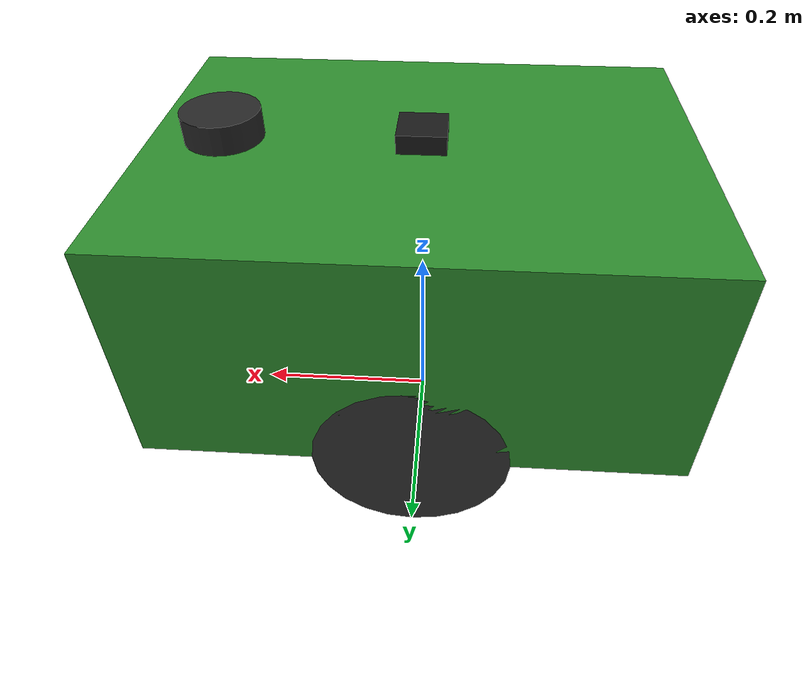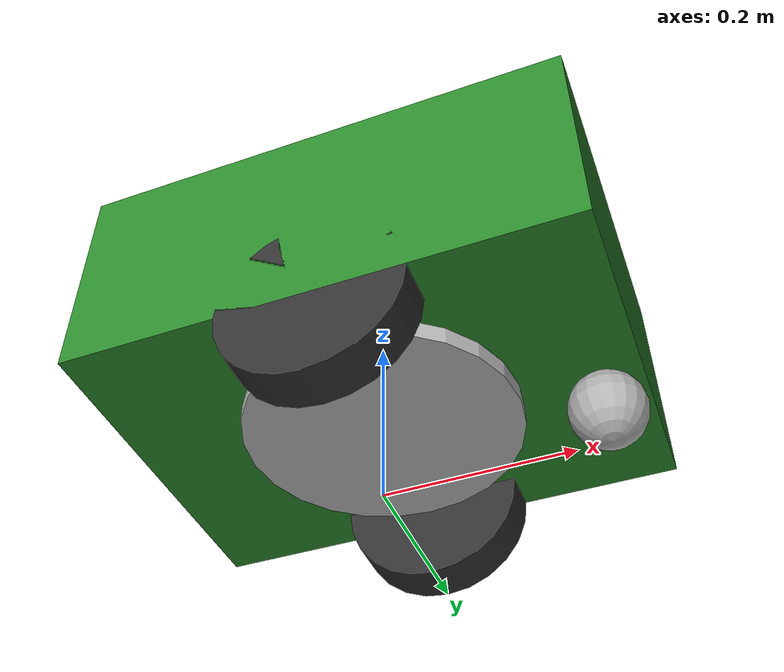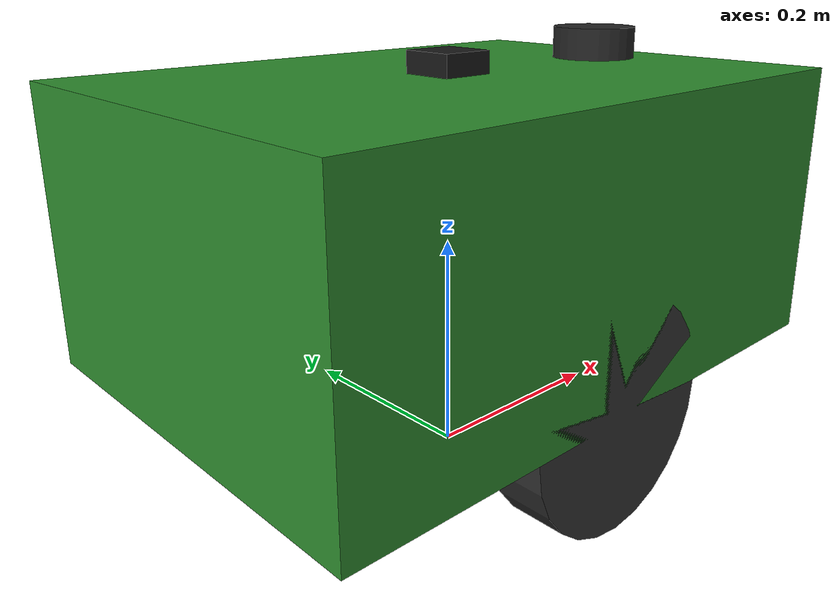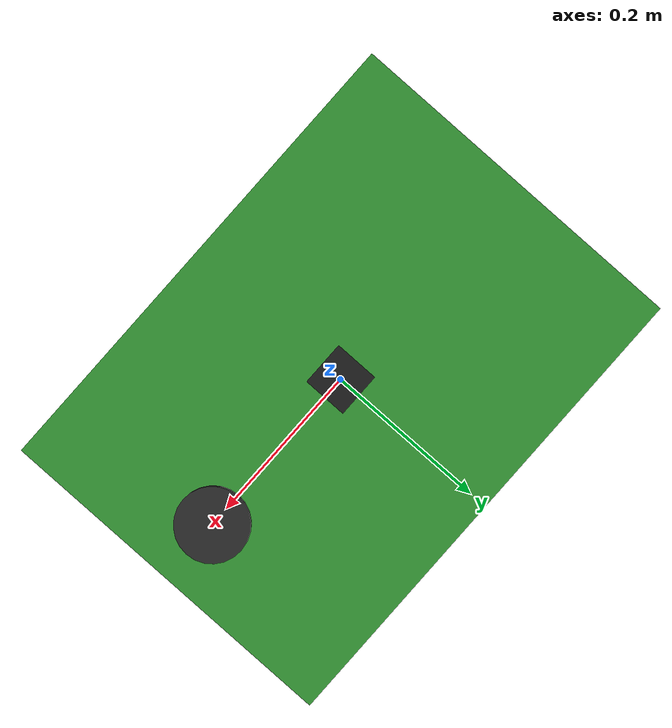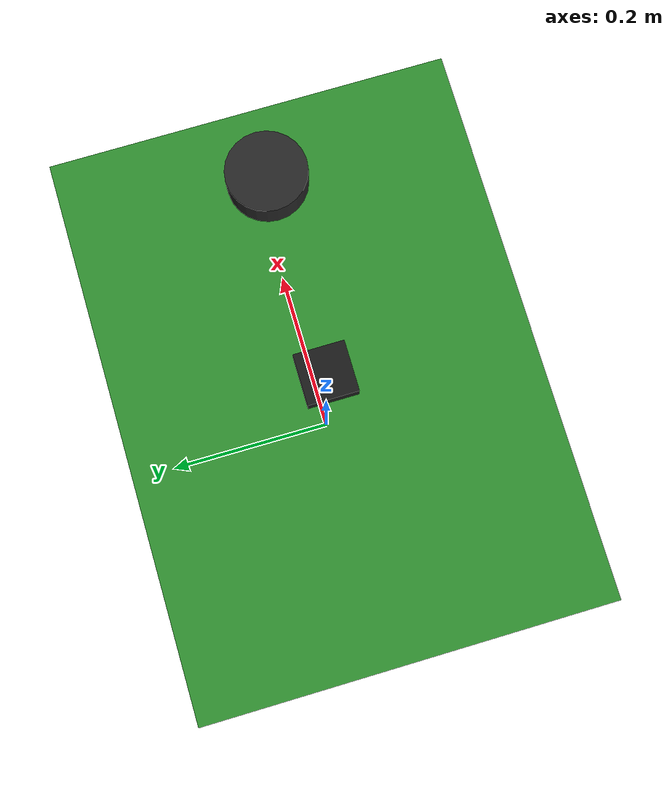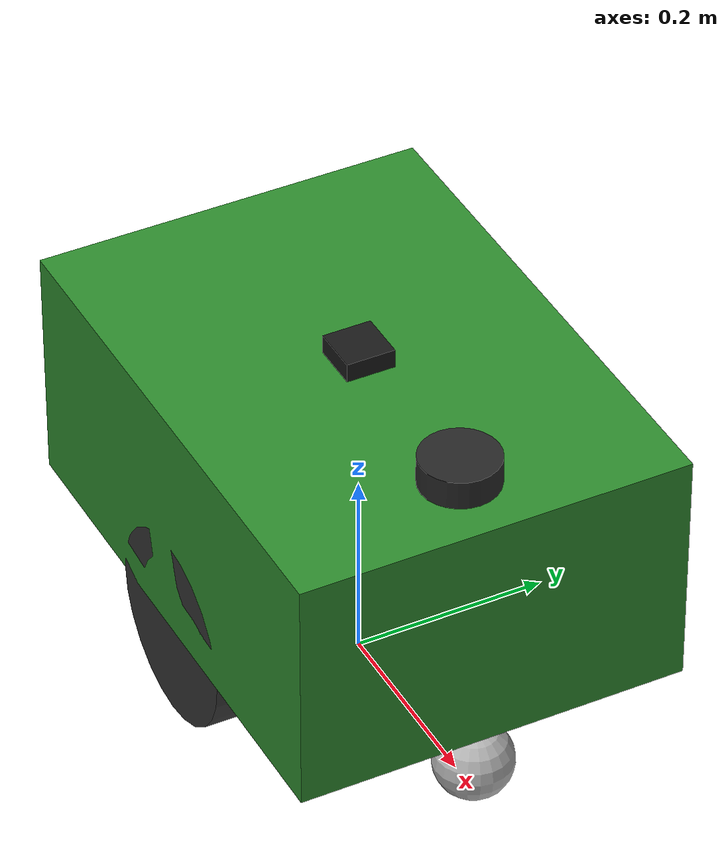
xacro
<?xml version="1.0"?>
<robot name="mowgli" xmlns:xacro="http://www.ros.org/wiki/xacro">

  <!-- ================================================================
       Properties
       ================================================================ -->
  <xacro:property name="base_length"     value="0.55"/>
  <xacro:property name="base_width"      value="0.40"/>
  <xacro:property name="base_height"     value="0.25"/>

  <xacro:property name="wheel_radius"    value="0.10"/>
  <xacro:property name="wheel_width"     value="0.05"/>
  <xacro:property name="wheel_track"     value="0.35"/>  <!-- centre-to-centre -->
  <xacro:property name="wheel_mass"      value="0.5"/>

  <xacro:property name="caster_radius"   value="0.04"/>
  <xacro:property name="caster_mass"     value="0.2"/>

  <xacro:property name="base_mass"       value="8.0"/>

  <xacro:property name="blade_radius"    value="0.15"/>
  <xacro:property name="blade_height"    value="0.02"/>
  <xacro:property name="blade_mass"      value="0.3"/>

  <!-- Derived: base_link is wheel_radius above ground -->
  <xacro:property name="base_z_offset"   value="${wheel_radius}"/>

  <!-- ================================================================
       Inertia macros
       ================================================================ -->

  <!-- Solid cylinder: axis along z -->
  <xacro:macro name="cylinder_inertia" params="m r h">
    <inertial>
      <mass value="${m}"/>
      <inertia
        ixx="${(1.0/12.0)*m*(3*r*r + h*h)}"
        ixy="0" ixz="0"
        iyy="${(1.0/12.0)*m*(3*r*r + h*h)}"
        iyz="0"
        izz="${0.5*m*r*r}"/>
    </inertial>
  </xacro:macro>

  <!-- Solid cylinder: axis along y (for wheels) -->
  <xacro:macro name="wheel_inertia" params="m r h">
    <inertial>
      <mass value="${m}"/>
      <!-- Rotate the standard cylinder inertia so the rolling axis is y -->
      <inertia
        ixx="${(1.0/12.0)*m*(3*r*r + h*h)}"
        ixy="0" ixz="0"
        iyy="${0.5*m*r*r}"
        iyz="0"
        izz="${(1.0/12.0)*m*(3*r*r + h*h)}"/>
    </inertial>
  </xacro:macro>

  <!-- Solid box -->
  <xacro:macro name="box_inertia" params="m x y z">
    <inertial>
      <mass value="${m}"/>
      <inertia
        ixx="${(1.0/12.0)*m*(y*y + z*z)}"
        ixy="0" ixz="0"
        iyy="${(1.0/12.0)*m*(x*x + z*z)}"
        iyz="0"
        izz="${(1.0/12.0)*m*(x*x + y*y)}"/>
    </inertial>
  </xacro:macro>

  <!-- ================================================================
       base_footprint  (on the ground plane)
       ================================================================ -->
  <link name="base_footprint"/>

  <joint name="base_footprint_to_base_link" type="fixed">
    <parent link="base_footprint"/>
    <child  link="base_link"/>
    <origin xyz="0 0 ${base_z_offset}" rpy="0 0 0"/>
  </joint>

  <link name="base_link">
    <visual>
      <origin xyz="0 0 ${base_height/2}" rpy="0 0 0"/>
      <geometry>
        <box size="${base_length} ${base_width} ${base_height}"/>
      </geometry>
      <material name="mowgli_green">
        <color rgba="0.18 0.55 0.18 1.0"/>
      </material>
    </visual>
    <collision>
      <origin xyz="0 0 ${base_height/2}" rpy="0 0 0"/>
      <geometry>
        <box size="${base_length} ${base_width} ${base_height}"/>
      </geometry>
    </collision>
    <xacro:box_inertia m="${base_mass}"
                       x="${base_length}"
                       y="${base_width}"
                       z="${base_height}"/>
  </link>

  <!-- ================================================================
       Drive wheel macro
       ================================================================ -->
  <xacro:macro name="drive_wheel" params="side y_reflect">
    <link name="${side}_wheel_link">
      <visual>
        <origin xyz="0 0 0" rpy="${pi/2} 0 0"/>
        <geometry>
          <cylinder radius="${wheel_radius}" length="${wheel_width}"/>
        </geometry>
        <material name="dark_grey">
          <color rgba="0.2 0.2 0.2 1.0"/>
        </material>
      </visual>
      <collision>
        <origin xyz="0 0 0" rpy="${pi/2} 0 0"/>
        <geometry>
          <cylinder radius="${wheel_radius}" length="${wheel_width}"/>
        </geometry>
      </collision>
      <xacro:wheel_inertia m="${wheel_mass}"
                           r="${wheel_radius}"
                           h="${wheel_width}"/>
    </link>

    <joint name="${side}_wheel_joint" type="continuous">
      <parent link="base_link"/>
      <child  link="${side}_wheel_link"/>
      <!-- Wheels sit at x=0 (mid-axle), y = ±track/2, z = 0 (ground) -->
      <origin xyz="0 ${y_reflect * wheel_track/2} 0" rpy="0 0 0"/>
      <axis xyz="0 1 0"/>
      <dynamics damping="0.1" friction="0.1"/>
    </joint>

    <!-- Gazebo friction for realistic wheel contact -->
    <gazebo reference="${side}_wheel_link">
      <mu1>1.0</mu1>
      <mu2>0.5</mu2>
      <kp>1e6</kp>
      <kd>1.0</kd>
      <minDepth>0.001</minDepth>
    </gazebo>
  </xacro:macro>

  <xacro:drive_wheel side="left"  y_reflect="1"/>
  <xacro:drive_wheel side="right" y_reflect="-1"/>

  <!-- ================================================================
       Front caster
       ================================================================ -->
  <link name="front_caster_link">
    <visual>
      <origin xyz="0 0 0" rpy="0 0 0"/>
      <geometry>
        <sphere radius="${caster_radius}"/>
      </geometry>
      <material name="light_grey">
        <color rgba="0.7 0.7 0.7 1.0"/>
      </material>
    </visual>
    <collision>
      <origin xyz="0 0 0" rpy="0 0 0"/>
      <geometry>
        <sphere radius="${caster_radius}"/>
      </geometry>
    </collision>
    <inertial>
      <mass value="${caster_mass}"/>
      <inertia
        ixx="${(2.0/5.0)*caster_mass*caster_radius*caster_radius}"
        ixy="0" ixz="0"
        iyy="${(2.0/5.0)*caster_mass*caster_radius*caster_radius}"
        iyz="0"
        izz="${(2.0/5.0)*caster_mass*caster_radius*caster_radius}"/>
    </inertial>
  </link>

  <joint name="front_caster_joint" type="fixed">
    <parent link="base_link"/>
    <child  link="front_caster_link"/>
    <!-- Front of base, at ground level (z = -wheel_radius + caster_radius) -->
    <origin xyz="${base_length/2 - caster_radius}
                 0
                 ${-wheel_radius + caster_radius}"
            rpy="0 0 0"/>
  </joint>

  <gazebo reference="front_caster_link">
    <mu1>0.0</mu1>
    <mu2>0.0</mu2>
    <kp>1e6</kp>
    <kd>1.0</kd>
  </gazebo>

  <!-- ================================================================
       Blade disc  (centred under base, just below chassis)
       ================================================================ -->
  <link name="blade_link">
    <visual>
      <origin xyz="0 0 0" rpy="0 0 0"/>
      <geometry>
        <cylinder radius="${blade_radius}" length="${blade_height}"/>
      </geometry>
      <material name="silver">
        <color rgba="0.75 0.75 0.75 1.0"/>
      </material>
    </visual>
    <collision>
      <origin xyz="0 0 0" rpy="0 0 0"/>
      <geometry>
        <cylinder radius="${blade_radius}" length="${blade_height}"/>
      </geometry>
    </collision>
    <xacro:cylinder_inertia m="${blade_mass}"
                            r="${blade_radius}"
                            h="${blade_height}"/>
  </link>

  <joint name="blade_joint" type="fixed">
    <parent link="base_link"/>
    <child  link="blade_link"/>
    <!-- Hang blade flush below the chassis floor -->
    <origin xyz="0 0 ${-(blade_height/2)}" rpy="0 0 0"/>
  </joint>

  <!-- ================================================================
       IMU link  (centre of base)
       ================================================================ -->
  <link name="imu_link">
    <visual>
      <origin xyz="0 0 0" rpy="0 0 0"/>
      <geometry>
        <box size="0.03 0.03 0.01"/>
      </geometry>
      <material name="blue_chip">
        <color rgba="0.0 0.2 0.8 1.0"/>
      </material>
    </visual>
    <collision>
      <origin xyz="0 0 0" rpy="0 0 0"/>
      <geometry>
        <box size="0.03 0.03 0.01"/>
      </geometry>
    </collision>
    <inertial>
      <mass value="0.01"/>
      <inertia ixx="1e-6" ixy="0" ixz="0"
               iyy="1e-6" iyz="0"
               izz="1e-6"/>
    </inertial>
  </link>

  <joint name="imu_joint" type="fixed">
    <parent link="base_link"/>
    <child  link="imu_link"/>
    <origin xyz="0 0 ${base_height/2}" rpy="0 0 0"/>
  </joint>

  <!-- ================================================================
       GPS link  (top centre of base)
       ================================================================ -->
  <link name="gps_link">
    <visual>
      <origin xyz="0 0 0" rpy="0 0 0"/>
      <geometry>
        <box size="0.05 0.05 0.02"/>
      </geometry>
      <material name="black">
        <color rgba="0.1 0.1 0.1 1.0"/>
      </material>
    </visual>
    <collision>
      <origin xyz="0 0 0" rpy="0 0 0"/>
      <geometry>
        <box size="0.05 0.05 0.02"/>
      </geometry>
    </collision>
    <inertial>
      <mass value="0.05"/>
      <inertia ixx="1e-5" ixy="0" ixz="0"
               iyy="1e-5" iyz="0"
               izz="1e-5"/>
    </inertial>
  </link>

  <joint name="gps_joint" type="fixed">
    <parent link="base_link"/>
    <child  link="gps_link"/>
    <!-- Mounted on top surface, centred -->
    <origin xyz="0 0 ${base_height + 0.01}" rpy="0 0 0"/>
  </joint>

  <link name="lidar_link">
    <visual>
      <origin xyz="0 0 0" rpy="0 0 0"/>
      <geometry>
        <cylinder radius="0.04" length="0.06"/>
      </geometry>
      <material name="dark_sensor">
        <color rgba="0.15 0.15 0.15 1.0"/>
      </material>
    </visual>
    <collision>
      <origin xyz="0 0 0" rpy="0 0 0"/>
      <geometry>
        <cylinder radius="0.04" length="0.06"/>
      </geometry>
    </collision>
    <inertial>
      <mass value="0.18"/>
      <inertia ixx="1e-4" ixy="0" ixz="0"
               iyy="1e-4" iyz="0"
               izz="1e-4"/>
    </inertial>
  </link>

  <joint name="lidar_joint" type="fixed">
    <parent link="base_link"/>
    <child  link="lidar_link"/>
    <origin xyz="0.20 0 0.25" rpy="0 0 0"/>
  </joint>

  <!-- ================================================================
       Gazebo simulation
       ================================================================ -->

</robot>
